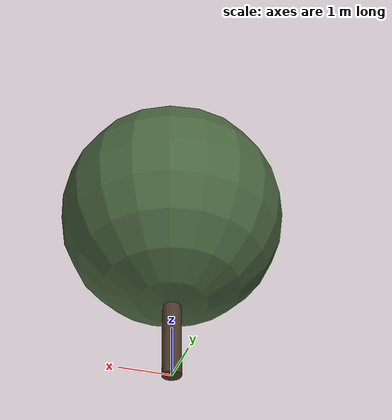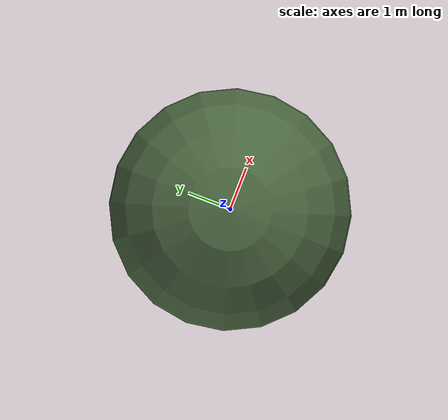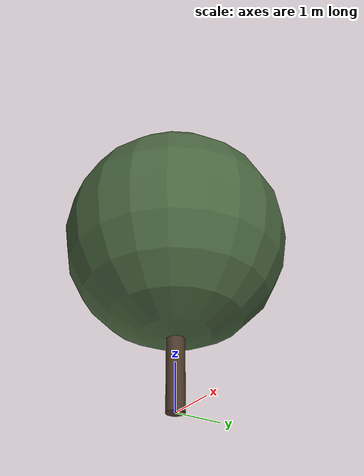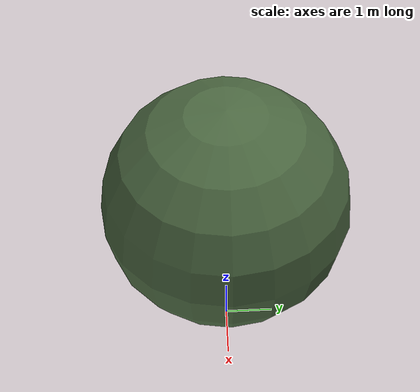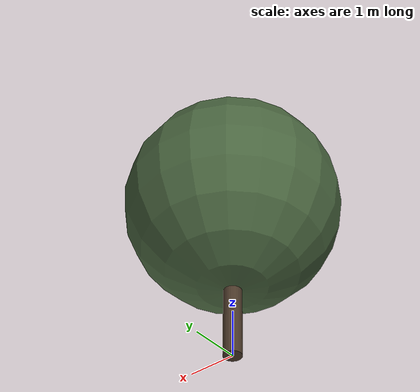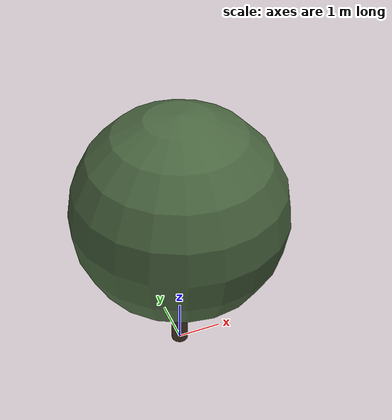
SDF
<?xml version="1.0" ?>
<sdf version="1.10">
  <model name="chene_vert_17">
    <static>true</static>

    <!-- Tronc -->
    <link name="trunk">
      <pose>0 0 1.5364388306820187 0 0 0</pose>
      <visual name="trunk_visual">
        <geometry>
          <cylinder>
            <radius>0.18760499834997604</radius>
            <length>3.0728776613640374</length>
          </cylinder>
        </geometry>
        <material>
          <ambient>0.29 0.22 0.16 1</ambient>
          <diffuse>0.29 0.22 0.16 1</diffuse>
          <specular>0.1 0.1 0.1 1</specular>
        </material>
      </visual>
      <collision name="trunk_collision">
        <geometry>
          <cylinder>
            <radius>0.18760499834997604</radius>
            <length>3.0728776613640374</length>
          </cylinder>
        </geometry>
      </collision>
    </link>

    <!-- Feuillage -->
    <link name="crown">
      <pose>0 0 3.7688555979091793 0 0 0</pose>
      <visual name="crown_visual">
        <geometry>
          <sphere>
              <radius>2.319926455150474</radius>
            </sphere>
        </geometry>
        <material>
          <ambient>0.29 0.40 0.25 1</ambient>
          <diffuse>0.29 0.40 0.25 1</diffuse>
          <specular>0.1 0.1 0.1 1</specular>
        </material>
      </visual>
      <collision name="crown_collision">
        <geometry>
          <sphere>
            <radius>1.8559411641203791</radius>
          </sphere>
        </geometry>
      </collision>
    </link>

    <!-- Joint tronc-feuillage -->
    <joint name="trunk_crown_joint" type="fixed">
      <parent>trunk</parent>
      <child>crown</child>
    </joint>

  </model>
</sdf>
